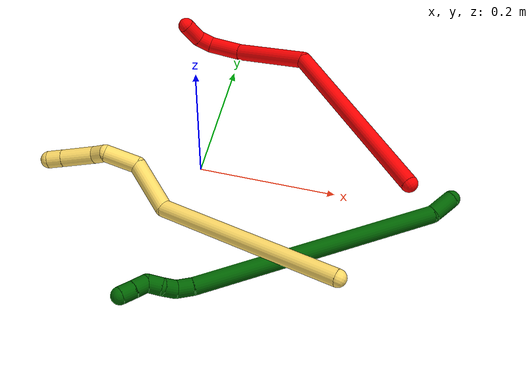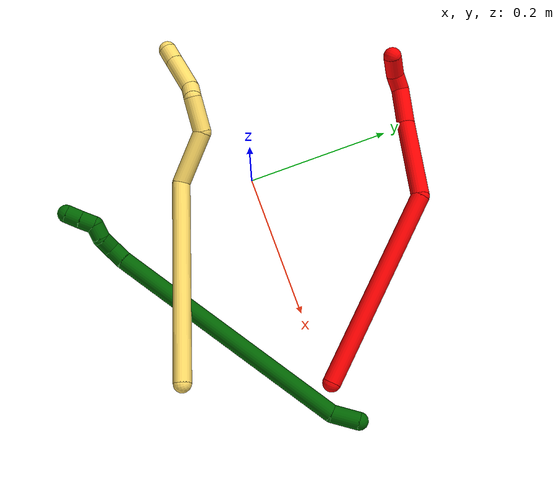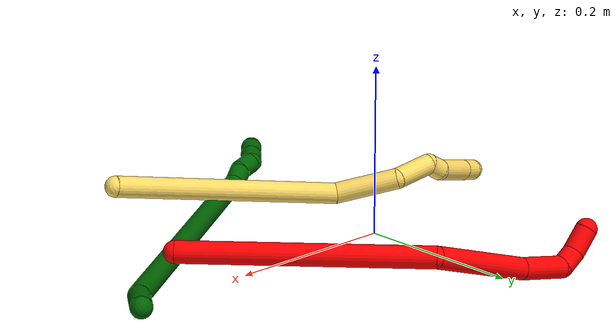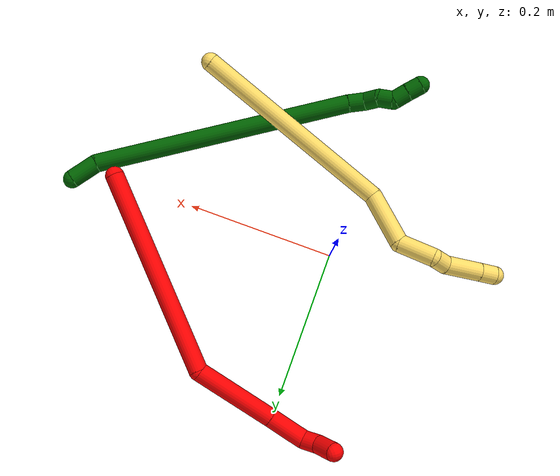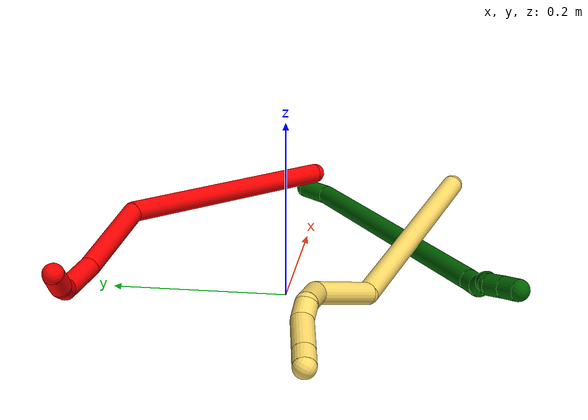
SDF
<sdf version="1.7">
 <world name="default">
  <model name="photoneo_s_sensor">
   <static>1</static>
   <pose>0 0 2 1.57079 1.57079 3.14159</pose>
   <link name="link">
    <inertial><mass>0.1</mass></inertial>
    <sensor name="sensor" type="depth">
     <update_rate>30</update_rate>
     <camera>
      <horizontal_fov>1.22</horizontal_fov>
      <image><width>1920</width><height>1200</height><format>B8G8R8</format></image>
      <clip><near>0.1</near><far>4</far></clip>
      <depth_camera><output>points</output></depth_camera>
     </camera>
     <plugin name="camera_plugin" filename="libgazebo_ros_depth_camera.so">
      <baseline>0.2</baseline>
      <alwaysOn>1</alwaysOn>
      <updateRate>0.0</updateRate>
      <cameraName>camera_ir</cameraName>
      <imageTopicName>/camera/color/image_raw</imageTopicName>
      <cameraInfoTopicName>/camera/color/camera_info</cameraInfoTopicName>
      <depthImageTopicName>/camera/depth/image_raw</depthImageTopicName>
      <depthImageCameraInfoTopicName>/camera/depth/camera_info</depthImageCameraInfoTopicName>
      <pointCloudTopicName>/camera/depth/points</pointCloudTopicName>
      <frameName>fr_optical</frameName>
      <pointCloudCutoff>0.1</pointCloudCutoff>
      <pointCloudCutoffMax>2.0</pointCloudCutoffMax>
      <distortionK1>0</distortionK1>
      <distortionK2>0</distortionK2>
      <distortionK3>0</distortionK3>
      <distortionT1>0</distortionT1>
      <distortionT2>0</distortionT2>
      <CxPrime>0</CxPrime>
      <Cx>0</Cx>
      <Cy>0</Cy>
      <focalLength>0</focalLength>
      <hackBaseline>0</hackBaseline>
     </plugin>
    </sensor>
   </link>
  </model>
  <model name="bin">
   <static>1</static>
   <link name="bottom">
    <collision name="collision-bottom">
     <pose>0 0 -0.01 0 -0 0</pose>
     <geometry><box><size>0.8 0.6 0.02</size></box></geometry>
     <surface>
      <friction><ode><mu>100</mu><mu2>100</mu2></ode></friction>
      <contact><collide_bitmask>65535</collide_bitmask></contact>
     </surface>
    </collision>
   </link>
   <link name="west_wall">
    <collision name="collision-west_wall">
     <pose>-0.41 0 0.1 0 -0 0</pose>
     <geometry><box><size>0.02 0.6 0.2</size></box></geometry>
     <surface>
      <friction><ode><mu>100</mu><mu2>100</mu2></ode></friction>
      <contact><collide_bitmask>65535</collide_bitmask></contact>
     </surface>
    </collision>
   </link>
   <link name="east_wall">
    <collision name="collision-east_wall">
     <pose>0.41 0 0.1 0 -0 0</pose>
     <geometry><box><size>0.02 0.6 0.2</size></box></geometry>
     <surface>
      <friction><ode><mu>100</mu><mu2>100</mu2></ode></friction>
      <contact><collide_bitmask>65535</collide_bitmask></contact>
     </surface>
    </collision>
   </link>
   <link name="south_wall">
    <collision name="collision-south_wall">
     <pose>0 -0.31 0.1 0 -0 0</pose>
     <geometry><box><size>0.8 0.02 0.2</size></box></geometry>
     <surface>
      <friction><ode><mu>100</mu><mu2>100</mu2></ode></friction>
      <contact><collide_bitmask>65535</collide_bitmask></contact>
     </surface>
    </collision>
   </link>
   <link name="north_wall">
    <collision name="collision-north_wall">
     <pose>0 0.31 0.1 0 -0 0</pose>
     <geometry><box><size>0.8 0.02 0.2</size></box></geometry>
     <surface>
      <friction><ode><mu>100</mu><mu2>100</mu2></ode></friction>
      <contact><collide_bitmask>65535</collide_bitmask></contact>
     </surface>
    </collision>
   </link>
  </model>
  <model name="2">
   <static>0</static>
   <link name="2">
    <collision name="collision-cylinder-e_1_1_4">
     <pose>-0.134992 0.032664 0.010885 -1.24913 -1.32107 1.02106</pose>
     <geometry><cylinder><radius>0.0125</radius><length>0.278628</length></cylinder></geometry>
     <surface>
      <friction><ode><mu>1.16</mu><mu2>1.16</mu2><slip1>0</slip1><slip2>0</slip2></ode></friction>
      <contact><ode><kp>1e+06</kp><kd>1</kd><max_vel>0</max_vel><min_depth>0.001</min_depth></ode></contact>
     </surface>
    </collision>
    <visual name="visual-cylinder-e_1_1_4">
     <pose>-0.134992 0.032664 0.010885 -1.24913 -1.32107 1.02106</pose>
     <geometry><cylinder><radius>0.0125</radius><length>0.278628</length></cylinder></geometry>
     <material><ambient>1 0 0 1</ambient></material>
    </visual>
    <collision name="collision-cylinder-e_2_4_5">
     <pose>-0.313024 0.071736 0.058801 -0.171372 -0.853 0.078022</pose>
     <geometry><cylinder><radius>0.0125</radius><length>0.114276</length></cylinder></geometry>
     <surface>
      <friction><ode><mu>1.16</mu><mu2>1.16</mu2><slip1>0</slip1><slip2>0</slip2></ode></friction>
      <contact><ode><kp>1e+06</kp><kd>1</kd><max_vel>0</max_vel><min_depth>0.001</min_depth></ode></contact>
     </surface>
    </collision>
    <visual name="visual-cylinder-e_2_4_5">
     <pose>-0.313024 0.071736 0.058801 -0.171372 -0.853 0.078022</pose>
     <geometry><cylinder><radius>0.0125</radius><length>0.114276</length></cylinder></geometry>
     <material><ambient>1 0 0 1</ambient></material>
    </visual>
    <collision name="collision-cylinder-e_3_5_6">
     <pose>-0.376294 0.085012 0.112254 -0.396032 -0.849187 0.180926</pose>
     <geometry><cylinder><radius>0.0125</radius><length>0.053892</length></cylinder></geometry>
     <surface>
      <friction><ode><mu>1.16</mu><mu2>1.16</mu2><slip1>0</slip1><slip2>0</slip2></ode></friction>
      <contact><ode><kp>1e+06</kp><kd>1</kd><max_vel>0</max_vel><min_depth>0.001</min_depth></ode></contact>
     </surface>
    </collision>
    <visual name="visual-cylinder-e_3_5_6">
     <pose>-0.376294 0.085012 0.112254 -0.396032 -0.849187 0.180926</pose>
     <geometry><cylinder><radius>0.0125</radius><length>0.053892</length></cylinder></geometry>
     <material><ambient>1 0 0 1</ambient></material>
    </visual>
    <collision name="collision-cylinder-e_4_6_7">
     <pose>-0.400435 0.101116 0.134274 -1.02604 -0.34748 0.197098</pose>
     <geometry><cylinder><radius>0.0125</radius><length>0.022973</length></cylinder></geometry>
     <surface>
      <friction><ode><mu>1.16</mu><mu2>1.16</mu2><slip1>0</slip1><slip2>0</slip2></ode></friction>
      <contact><ode><kp>1e+06</kp><kd>1</kd><max_vel>0</max_vel><min_depth>0.001</min_depth></ode></contact>
     </surface>
    </collision>
    <visual name="visual-cylinder-e_4_6_7">
     <pose>-0.400435 0.101116 0.134274 -1.02604 -0.34748 0.197098</pose>
     <geometry><cylinder><radius>0.0125</radius><length>0.022973</length></cylinder></geometry>
     <material><ambient>1 0 0 1</ambient></material>
    </visual>
    <collision name="collision-cylinder-e_5_7_2">
     <pose>-0.407946 0.124791 0.142521 -1.38922 -0.240432 0.200603</pose>
     <geometry><cylinder><radius>0.0125</radius><length>0.03023</length></cylinder></geometry>
     <surface>
      <friction><ode><mu>1.16</mu><mu2>1.16</mu2><slip1>0</slip1><slip2>0</slip2></ode></friction>
      <contact><ode><kp>1e+06</kp><kd>1</kd><max_vel>0</max_vel><min_depth>0.001</min_depth></ode></contact>
     </surface>
    </collision>
    <visual name="visual-cylinder-e_5_7_2">
     <pose>-0.407946 0.124791 0.142521 -1.38922 -0.240432 0.200603</pose>
     <geometry><cylinder><radius>0.0125</radius><length>0.03023</length></cylinder></geometry>
     <material><ambient>1 0 0 1</ambient></material>
    </visual>
    <collision name="collision-sphere-2">
     <pose>-0.411545 0.139231 0.145172 0 -0 0</pose>
     <geometry><sphere><radius>0.0125</radius></sphere></geometry>
     <surface>
      <friction><ode><mu>1.16</mu><mu2>1.16</mu2><slip1>0</slip1><slip2>0</slip2></ode></friction>
      <contact><ode><kp>1e+06</kp><kd>1</kd><max_vel>0</max_vel><min_depth>0.001</min_depth></ode></contact>
     </surface>
    </collision>
    <visual name="visual-sphere-2">
     <pose>-0.411545 0.139231 0.145172 0 -0 0</pose>
     <geometry><sphere><radius>0.0125</radius></sphere></geometry>
     <material><ambient>1 0 0 1</ambient></material>
    </visual>
    <collision name="collision-sphere-7">
     <pose>-0.404347 0.110352 0.13987 0 -0 0</pose>
     <geometry><sphere><radius>0.0125</radius></sphere></geometry>
     <surface>
      <friction><ode><mu>1.16</mu><mu2>1.16</mu2><slip1>0</slip1><slip2>0</slip2></ode></friction>
      <contact><ode><kp>1e+06</kp><kd>1</kd><max_vel>0</max_vel><min_depth>0.001</min_depth></ode></contact>
     </surface>
    </collision>
    <visual name="visual-sphere-7">
     <pose>-0.404347 0.110352 0.13987 0 -0 0</pose>
     <geometry><sphere><radius>0.0125</radius></sphere></geometry>
     <material><ambient>1 0 0 1</ambient></material>
    </visual>
    <collision name="collision-sphere-6">
     <pose>-0.396523 0.091879 0.128677 0 -0 0</pose>
     <geometry><sphere><radius>0.0125</radius></sphere></geometry>
     <surface>
      <friction><ode><mu>1.16</mu><mu2>1.16</mu2><slip1>0</slip1><slip2>0</slip2></ode></friction>
      <contact><ode><kp>1e+06</kp><kd>1</kd><max_vel>0</max_vel><min_depth>0.001</min_depth></ode></contact>
     </surface>
    </collision>
    <visual name="visual-sphere-6">
     <pose>-0.396523 0.091879 0.128677 0 -0 0</pose>
     <geometry><sphere><radius>0.0125</radius></sphere></geometry>
     <material><ambient>1 0 0 1</ambient></material>
    </visual>
    <collision name="collision-sphere-5">
     <pose>-0.356064 0.078145 0.095831 0 -0 0</pose>
     <geometry><sphere><radius>0.0125</radius></sphere></geometry>
     <surface>
      <friction><ode><mu>1.16</mu><mu2>1.16</mu2><slip1>0</slip1><slip2>0</slip2></ode></friction>
      <contact><ode><kp>1e+06</kp><kd>1</kd><max_vel>0</max_vel><min_depth>0.001</min_depth></ode></contact>
     </surface>
    </collision>
    <visual name="visual-sphere-5">
     <pose>-0.356064 0.078145 0.095831 0 -0 0</pose>
     <geometry><sphere><radius>0.0125</radius></sphere></geometry>
     <material><ambient>1 0 0 1</ambient></material>
    </visual>
    <collision name="collision-sphere-1">
     <geometry><sphere><radius>0.0125</radius></sphere></geometry>
     <surface>
      <friction><ode><mu>1.16</mu><mu2>1.16</mu2><slip1>0</slip1><slip2>0</slip2></ode></friction>
      <contact><ode><kp>1e+06</kp><kd>1</kd><max_vel>0</max_vel><min_depth>0.001</min_depth></ode></contact>
     </surface>
    </collision>
    <visual name="visual-sphere-1">
     <geometry><sphere><radius>0.0125</radius></sphere></geometry>
     <material><ambient>1 0 0 1</ambient></material>
    </visual>
    <collision name="collision-sphere-4">
     <pose>-0.269985 0.065327 0.02177 0 -0 0</pose>
     <geometry><sphere><radius>0.0125</radius></sphere></geometry>
     <surface>
      <friction><ode><mu>1.16</mu><mu2>1.16</mu2><slip1>0</slip1><slip2>0</slip2></ode></friction>
      <contact><ode><kp>1e+06</kp><kd>1</kd><max_vel>0</max_vel><min_depth>0.001</min_depth></ode></contact>
     </surface>
    </collision>
    <visual name="visual-sphere-4">
     <pose>-0.269985 0.065327 0.02177 0 -0 0</pose>
     <geometry><sphere><radius>0.0125</radius></sphere></geometry>
     <material><ambient>1 0 0 1</ambient></material>
    </visual>
    <inertial>
     <pose>-0.23039 0.055951 0.04639 0 -0 0</pose>
     <mass>0.5</mass>
     <inertia>
      <ixx>0.000693</ixx>
      <ixy>0</ixy>
      <ixz>0</ixz>
      <iyy>0.002268</iyy>
      <iyz>0</iyz>
      <izz>0.00143</izz>
     </inertia>
    </inertial>
   </link>
   <pose>0.301998 0.002478 0.054742 1.97298 -0.191042 -0.971519</pose>
  </model>
  <model name="5">
   <static>0</static>
   <link name="5">
    <collision name="collision-cylinder-e_1_1_4">
     <pose>-0.135678 -0.035193 -0.007168 1.77171 -1.31202 -1.5114</pose>
     <geometry><cylinder><radius>0.0125</radius><length>0.280702</length></cylinder></geometry>
     <surface>
      <friction><ode><mu>1.16</mu><mu2>1.16</mu2><slip1>0</slip1><slip2>0</slip2></ode></friction>
      <contact><ode><kp>1e+06</kp><kd>1</kd><max_vel>0</max_vel><min_depth>0.001</min_depth></ode></contact>
     </surface>
    </collision>
    <visual name="visual-cylinder-e_1_1_4">
     <pose>-0.135678 -0.035193 -0.007168 1.77171 -1.31202 -1.5114</pose>
     <geometry><cylinder><radius>0.0125</radius><length>0.280702</length></cylinder></geometry>
     <material><ambient>1 0.858824 0.4 1</ambient></material>
    </visual>
    <collision name="collision-cylinder-e_2_4_5">
     <pose>-0.302203 -0.071453 -0.036909 3.09436 -0.938508 -3.04849</pose>
     <geometry><cylinder><radius>0.0125</radius><length>0.07648</length></cylinder></geometry>
     <surface>
      <friction><ode><mu>1.16</mu><mu2>1.16</mu2><slip1>0</slip1><slip2>0</slip2></ode></friction>
      <contact><ode><kp>1e+06</kp><kd>1</kd><max_vel>0</max_vel><min_depth>0.001</min_depth></ode></contact>
     </surface>
    </collision>
    <visual name="visual-cylinder-e_2_4_5">
     <pose>-0.302203 -0.071453 -0.036909 3.09436 -0.938508 -3.04849</pose>
     <geometry><cylinder><radius>0.0125</radius><length>0.07648</length></cylinder></geometry>
     <material><ambient>1 0.858824 0.4 1</ambient></material>
    </visual>
    <collision name="collision-cylinder-e_3_5_6">
     <pose>-0.357463 -0.068803 -0.058835 -1.39795 -1.41747 1.24886</pose>
     <geometry><cylinder><radius>0.0125</radius><length>0.049406</length></cylinder></geometry>
     <surface>
      <friction><ode><mu>1.16</mu><mu2>1.16</mu2><slip1>0</slip1><slip2>0</slip2></ode></friction>
      <contact><ode><kp>1e+06</kp><kd>1</kd><max_vel>0</max_vel><min_depth>0.001</min_depth></ode></contact>
     </surface>
    </collision>
    <visual name="visual-cylinder-e_3_5_6">
     <pose>-0.357463 -0.068803 -0.058835 -1.39795 -1.41747 1.24886</pose>
     <geometry><cylinder><radius>0.0125</radius><length>0.049406</length></cylinder></geometry>
     <material><ambient>1 0.858824 0.4 1</ambient></material>
    </visual>
    <collision name="collision-cylinder-e_4_6_7">
     <pose>-0.390756 -0.070325 -0.055287 1.06535 -0.977637 -0.607679</pose>
     <geometry><cylinder><radius>0.0125</radius><length>0.02142</length></cylinder></geometry>
     <surface>
      <friction><ode><mu>1.16</mu><mu2>1.16</mu2><slip1>0</slip1><slip2>0</slip2></ode></friction>
      <contact><ode><kp>1e+06</kp><kd>1</kd><max_vel>0</max_vel><min_depth>0.001</min_depth></ode></contact>
     </surface>
    </collision>
    <visual name="visual-cylinder-e_4_6_7">
     <pose>-0.390756 -0.070325 -0.055287 1.06535 -0.977637 -0.607679</pose>
     <geometry><cylinder><radius>0.0125</radius><length>0.02142</length></cylinder></geometry>
     <material><ambient>1 0.858824 0.4 1</ambient></material>
    </visual>
    <collision name="collision-cylinder-e_5_7_8">
     <pose>-0.422196 -0.078705 -0.04235 0.303374 -1.13448 -0.194158</pose>
     <geometry><cylinder><radius>0.0125</radius><length>0.049782</length></cylinder></geometry>
     <surface>
      <friction><ode><mu>1.16</mu><mu2>1.16</mu2><slip1>0</slip1><slip2>0</slip2></ode></friction>
      <contact><ode><kp>1e+06</kp><kd>1</kd><max_vel>0</max_vel><min_depth>0.001</min_depth></ode></contact>
     </surface>
    </collision>
    <visual name="visual-cylinder-e_5_7_8">
     <pose>-0.422196 -0.078705 -0.04235 0.303374 -1.13448 -0.194158</pose>
     <geometry><cylinder><radius>0.0125</radius><length>0.049782</length></cylinder></geometry>
     <material><ambient>1 0.858824 0.4 1</ambient></material>
    </visual>
    <collision name="collision-cylinder-e_6_8_2">
     <pose>-0.454855 -0.083254 -0.027914 0.309527 -1.14207 -0.199786</pose>
     <geometry><cylinder><radius>0.0125</radius><length>0.022211</length></cylinder></geometry>
     <surface>
      <friction><ode><mu>1.16</mu><mu2>1.16</mu2><slip1>0</slip1><slip2>0</slip2></ode></friction>
      <contact><ode><kp>1e+06</kp><kd>1</kd><max_vel>0</max_vel><min_depth>0.001</min_depth></ode></contact>
     </surface>
    </collision>
    <visual name="visual-cylinder-e_6_8_2">
     <pose>-0.454855 -0.083254 -0.027914 0.309527 -1.14207 -0.199786</pose>
     <geometry><cylinder><radius>0.0125</radius><length>0.022211</length></cylinder></geometry>
     <material><ambient>1 0.858824 0.4 1</ambient></material>
    </visual>
    <collision name="collision-sphere-2">
     <pose>-0.464956 -0.084661 -0.023517 0 -0 0</pose>
     <geometry><sphere><radius>0.0125</radius></sphere></geometry>
     <surface>
      <friction><ode><mu>1.16</mu><mu2>1.16</mu2><slip1>0</slip1><slip2>0</slip2></ode></friction>
      <contact><ode><kp>1e+06</kp><kd>1</kd><max_vel>0</max_vel><min_depth>0.001</min_depth></ode></contact>
     </surface>
    </collision>
    <visual name="visual-sphere-2">
     <pose>-0.464956 -0.084661 -0.023517 0 -0 0</pose>
     <geometry><sphere><radius>0.0125</radius></sphere></geometry>
     <material><ambient>1 0.858824 0.4 1</ambient></material>
    </visual>
    <collision name="collision-sphere-4">
     <pose>-0.271355 -0.070386 -0.014335 0 -0 0</pose>
     <geometry><sphere><radius>0.0125</radius></sphere></geometry>
     <surface>
      <friction><ode><mu>1.16</mu><mu2>1.16</mu2><slip1>0</slip1><slip2>0</slip2></ode></friction>
      <contact><ode><kp>1e+06</kp><kd>1</kd><max_vel>0</max_vel><min_depth>0.001</min_depth></ode></contact>
     </surface>
    </collision>
    <visual name="visual-sphere-4">
     <pose>-0.271355 -0.070386 -0.014335 0 -0 0</pose>
     <geometry><sphere><radius>0.0125</radius></sphere></geometry>
     <material><ambient>1 0.858824 0.4 1</ambient></material>
    </visual>
    <collision name="collision-sphere-1">
     <geometry><sphere><radius>0.0125</radius></sphere></geometry>
     <surface>
      <friction><ode><mu>1.16</mu><mu2>1.16</mu2><slip1>0</slip1><slip2>0</slip2></ode></friction>
      <contact><ode><kp>1e+06</kp><kd>1</kd><max_vel>0</max_vel><min_depth>0.001</min_depth></ode></contact>
     </surface>
    </collision>
    <visual name="visual-sphere-1">
     <geometry><sphere><radius>0.0125</radius></sphere></geometry>
     <material><ambient>1 0.858824 0.4 1</ambient></material>
    </visual>
    <collision name="collision-sphere-8">
     <pose>-0.444755 -0.081848 -0.032311 0 -0 0</pose>
     <geometry><sphere><radius>0.0125</radius></sphere></geometry>
     <surface>
      <friction><ode><mu>1.16</mu><mu2>1.16</mu2><slip1>0</slip1><slip2>0</slip2></ode></friction>
      <contact><ode><kp>1e+06</kp><kd>1</kd><max_vel>0</max_vel><min_depth>0.001</min_depth></ode></contact>
     </surface>
    </collision>
    <visual name="visual-sphere-8">
     <pose>-0.444755 -0.081848 -0.032311 0 -0 0</pose>
     <geometry><sphere><radius>0.0125</radius></sphere></geometry>
     <material><ambient>1 0.858824 0.4 1</ambient></material>
    </visual>
    <collision name="collision-sphere-5">
     <pose>-0.33305 -0.07252 -0.059484 0 -0 0</pose>
     <geometry><sphere><radius>0.0125</radius></sphere></geometry>
     <surface>
      <friction><ode><mu>1.16</mu><mu2>1.16</mu2><slip1>0</slip1><slip2>0</slip2></ode></friction>
      <contact><ode><kp>1e+06</kp><kd>1</kd><max_vel>0</max_vel><min_depth>0.001</min_depth></ode></contact>
     </surface>
    </collision>
    <visual name="visual-sphere-5">
     <pose>-0.33305 -0.07252 -0.059484 0 -0 0</pose>
     <geometry><sphere><radius>0.0125</radius></sphere></geometry>
     <material><ambient>1 0.858824 0.4 1</ambient></material>
    </visual>
    <collision name="collision-sphere-6">
     <pose>-0.381876 -0.065087 -0.058186 0 -0 0</pose>
     <geometry><sphere><radius>0.0125</radius></sphere></geometry>
     <surface>
      <friction><ode><mu>1.16</mu><mu2>1.16</mu2><slip1>0</slip1><slip2>0</slip2></ode></friction>
      <contact><ode><kp>1e+06</kp><kd>1</kd><max_vel>0</max_vel><min_depth>0.001</min_depth></ode></contact>
     </surface>
    </collision>
    <visual name="visual-sphere-6">
     <pose>-0.381876 -0.065087 -0.058186 0 -0 0</pose>
     <geometry><sphere><radius>0.0125</radius></sphere></geometry>
     <material><ambient>1 0.858824 0.4 1</ambient></material>
    </visual>
    <collision name="collision-sphere-7">
     <pose>-0.399637 -0.075563 -0.052389 0 -0 0</pose>
     <geometry><sphere><radius>0.0125</radius></sphere></geometry>
     <surface>
      <friction><ode><mu>1.16</mu><mu2>1.16</mu2><slip1>0</slip1><slip2>0</slip2></ode></friction>
      <contact><ode><kp>1e+06</kp><kd>1</kd><max_vel>0</max_vel><min_depth>0.001</min_depth></ode></contact>
     </surface>
    </collision>
    <visual name="visual-sphere-7">
     <pose>-0.399637 -0.075563 -0.052389 0 -0 0</pose>
     <geometry><sphere><radius>0.0125</radius></sphere></geometry>
     <material><ambient>1 0.858824 0.4 1</ambient></material>
    </visual>
    <inertial>
     <pose>-0.236697 -0.052033 -0.023308 0 -0 0</pose>
     <mass>0.5</mass>
     <inertia>
      <ixx>-0.0005</ixx>
      <ixy>0</ixy>
      <ixz>0</ixz>
      <iyy>0.001316</iyy>
      <iyz>0</iyz>
      <izz>0.002316</izz>
     </inertia>
    </inertial>
   </link>
   <pose>0.234938 -0.181868 0.066387 2.00007 0.037233 -0.16733</pose>
  </model>
  <model name="6">
   <static>0</static>
   <link name="6">
    <collision name="collision-cylinder-e_1_1_4">
     <pose>-0.015402 -0.009938 -0.006239 2.13144 -0.919767 -1.46098</pose>
     <geometry><cylinder><radius>0.0125</radius><length>0.038725</length></cylinder></geometry>
     <surface>
      <friction><ode><mu>1.16</mu><mu2>1.16</mu2><slip1>0</slip1><slip2>0</slip2></ode></friction>
      <contact><ode><kp>1e+06</kp><kd>1</kd><max_vel>0</max_vel><min_depth>0.001</min_depth></ode></contact>
     </surface>
    </collision>
    <visual name="visual-cylinder-e_1_1_4">
     <pose>-0.015402 -0.009938 -0.006239 2.13144 -0.919767 -1.46098</pose>
     <geometry><cylinder><radius>0.0125</radius><length>0.038725</length></cylinder></geometry>
     <material><ambient>0 0.392157 0.003922 1</ambient></material>
    </visual>
    <collision name="collision-cylinder-e_2_4_5">
     <pose>-0.140306 -0.157381 -0.035161 1.73428 -0.665972 -0.774069</pose>
     <geometry><cylinder><radius>0.0125</radius><length>0.354474</length></cylinder></geometry>
     <surface>
      <friction><ode><mu>1.16</mu><mu2>1.16</mu2><slip1>0</slip1><slip2>0</slip2></ode></friction>
      <contact><ode><kp>1e+06</kp><kd>1</kd><max_vel>0</max_vel><min_depth>0.001</min_depth></ode></contact>
     </surface>
    </collision>
    <visual name="visual-cylinder-e_2_4_5">
     <pose>-0.140306 -0.157381 -0.035161 1.73428 -0.665972 -0.774069</pose>
     <geometry><cylinder><radius>0.0125</radius><length>0.354474</length></cylinder></geometry>
     <material><ambient>0 0.392157 0.003922 1</ambient></material>
    </visual>
    <collision name="collision-cylinder-e_3_5_6">
     <pose>-0.255997 -0.304965 -0.0588 1.66534 -0.548851 -0.600273</pose>
     <geometry><cylinder><radius>0.0125</radius><length>0.02373</length></cylinder></geometry>
     <surface>
      <friction><ode><mu>1.16</mu><mu2>1.16</mu2><slip1>0</slip1><slip2>0</slip2></ode></friction>
      <contact><ode><kp>1e+06</kp><kd>1</kd><max_vel>0</max_vel><min_depth>0.001</min_depth></ode></contact>
     </surface>
    </collision>
    <visual name="visual-cylinder-e_3_5_6">
     <pose>-0.255997 -0.304965 -0.0588 1.66534 -0.548851 -0.600273</pose>
     <geometry><cylinder><radius>0.0125</radius><length>0.02373</length></cylinder></geometry>
     <material><ambient>0 0.392157 0.003922 1</ambient></material>
    </visual>
    <collision name="collision-cylinder-e_4_6_7">
     <pose>-0.26348 -0.324634 -0.064356 2.01799 -0.120947 -0.191788</pose>
     <geometry><cylinder><radius>0.0125</radius><length>0.021433</length></cylinder></geometry>
     <surface>
      <friction><ode><mu>1.16</mu><mu2>1.16</mu2><slip1>0</slip1><slip2>0</slip2></ode></friction>
      <contact><ode><kp>1e+06</kp><kd>1</kd><max_vel>0</max_vel><min_depth>0.001</min_depth></ode></contact>
     </surface>
    </collision>
    <visual name="visual-cylinder-e_4_6_7">
     <pose>-0.26348 -0.324634 -0.064356 2.01799 -0.120947 -0.191788</pose>
     <geometry><cylinder><radius>0.0125</radius><length>0.021433</length></cylinder></geometry>
     <material><ambient>0 0.392157 0.003922 1</ambient></material>
    </visual>
    <collision name="collision-cylinder-e_5_7_8">
     <pose>-0.266319 -0.344346 -0.068961 1.57128 -0.151578 -0.151651</pose>
     <geometry><cylinder><radius>0.0125</radius><length>0.020474</length></cylinder></geometry>
     <surface>
      <friction><ode><mu>1.16</mu><mu2>1.16</mu2><slip1>0</slip1><slip2>0</slip2></ode></friction>
      <contact><ode><kp>1e+06</kp><kd>1</kd><max_vel>0</max_vel><min_depth>0.001</min_depth></ode></contact>
     </surface>
    </collision>
    <visual name="visual-cylinder-e_5_7_8">
     <pose>-0.266319 -0.344346 -0.068961 1.57128 -0.151578 -0.151651</pose>
     <geometry><cylinder><radius>0.0125</radius><length>0.020474</length></cylinder></geometry>
     <material><ambient>0 0.392157 0.003922 1</ambient></material>
    </visual>
    <collision name="collision-cylinder-e_6_8_9">
     <pose>-0.274518 -0.361122 -0.073194 2.13665 -0.700824 -1.17387</pose>
     <geometry><cylinder><radius>0.0125</radius><length>0.020635</length></cylinder></geometry>
     <surface>
      <friction><ode><mu>1.16</mu><mu2>1.16</mu2><slip1>0</slip1><slip2>0</slip2></ode></friction>
      <contact><ode><kp>1e+06</kp><kd>1</kd><max_vel>0</max_vel><min_depth>0.001</min_depth></ode></contact>
     </surface>
    </collision>
    <visual name="visual-cylinder-e_6_8_9">
     <pose>-0.274518 -0.361122 -0.073194 2.13665 -0.700824 -1.17387</pose>
     <geometry><cylinder><radius>0.0125</radius><length>0.020635</length></cylinder></geometry>
     <material><ambient>0 0.392157 0.003922 1</ambient></material>
    </visual>
    <collision name="collision-cylinder-e_7_9_2">
     <pose>-0.28776 -0.374625 -0.081303 2.08652 -0.697027 -1.11525</pose>
     <geometry><cylinder><radius>0.0125</radius><length>0.020528</length></cylinder></geometry>
     <surface>
      <friction><ode><mu>1.16</mu><mu2>1.16</mu2><slip1>0</slip1><slip2>0</slip2></ode></friction>
      <contact><ode><kp>1e+06</kp><kd>1</kd><max_vel>0</max_vel><min_depth>0.001</min_depth></ode></contact>
     </surface>
    </collision>
    <visual name="visual-cylinder-e_7_9_2">
     <pose>-0.28776 -0.374625 -0.081303 2.08652 -0.697027 -1.11525</pose>
     <geometry><cylinder><radius>0.0125</radius><length>0.020528</length></cylinder></geometry>
     <material><ambient>0 0.392157 0.003922 1</ambient></material>
    </visual>
    <collision name="collision-sphere-2">
     <pose>-0.294349 -0.381472 -0.085184 0 -0 0</pose>
     <geometry><sphere><radius>0.0125</radius></sphere></geometry>
     <surface>
      <friction><ode><mu>1.16</mu><mu2>1.16</mu2><slip1>0</slip1><slip2>0</slip2></ode></friction>
      <contact><ode><kp>1e+06</kp><kd>1</kd><max_vel>0</max_vel><min_depth>0.001</min_depth></ode></contact>
     </surface>
    </collision>
    <visual name="visual-sphere-2">
     <pose>-0.294349 -0.381472 -0.085184 0 -0 0</pose>
     <geometry><sphere><radius>0.0125</radius></sphere></geometry>
     <material><ambient>0 0.392157 0.003922 1</ambient></material>
    </visual>
    <collision name="collision-sphere-9">
     <pose>-0.281171 -0.367779 -0.077421 0 -0 0</pose>
     <geometry><sphere><radius>0.0125</radius></sphere></geometry>
     <surface>
      <friction><ode><mu>1.16</mu><mu2>1.16</mu2><slip1>0</slip1><slip2>0</slip2></ode></friction>
      <contact><ode><kp>1e+06</kp><kd>1</kd><max_vel>0</max_vel><min_depth>0.001</min_depth></ode></contact>
     </surface>
    </collision>
    <visual name="visual-sphere-9">
     <pose>-0.281171 -0.367779 -0.077421 0 -0 0</pose>
     <geometry><sphere><radius>0.0125</radius></sphere></geometry>
     <material><ambient>0 0.392157 0.003922 1</ambient></material>
    </visual>
    <collision name="collision-sphere-4">
     <pose>-0.030804 -0.019875 -0.012478 0 -0 0</pose>
     <geometry><sphere><radius>0.0125</radius></sphere></geometry>
     <surface>
      <friction><ode><mu>1.16</mu><mu2>1.16</mu2><slip1>0</slip1><slip2>0</slip2></ode></friction>
      <contact><ode><kp>1e+06</kp><kd>1</kd><max_vel>0</max_vel><min_depth>0.001</min_depth></ode></contact>
     </surface>
    </collision>
    <visual name="visual-sphere-4">
     <pose>-0.030804 -0.019875 -0.012478 0 -0 0</pose>
     <geometry><sphere><radius>0.0125</radius></sphere></geometry>
     <material><ambient>0 0.392157 0.003922 1</ambient></material>
    </visual>
    <collision name="collision-sphere-1">
     <geometry><sphere><radius>0.0125</radius></sphere></geometry>
     <surface>
      <friction><ode><mu>1.16</mu><mu2>1.16</mu2><slip1>0</slip1><slip2>0</slip2></ode></friction>
      <contact><ode><kp>1e+06</kp><kd>1</kd><max_vel>0</max_vel><min_depth>0.001</min_depth></ode></contact>
     </surface>
    </collision>
    <visual name="visual-sphere-1">
     <geometry><sphere><radius>0.0125</radius></sphere></geometry>
     <material><ambient>0 0.392157 0.003922 1</ambient></material>
    </visual>
    <collision name="collision-sphere-8">
     <pose>-0.267865 -0.354465 -0.068966 0 -0 0</pose>
     <geometry><sphere><radius>0.0125</radius></sphere></geometry>
     <surface>
      <friction><ode><mu>1.16</mu><mu2>1.16</mu2><slip1>0</slip1><slip2>0</slip2></ode></friction>
      <contact><ode><kp>1e+06</kp><kd>1</kd><max_vel>0</max_vel><min_depth>0.001</min_depth></ode></contact>
     </surface>
    </collision>
    <visual name="visual-sphere-8">
     <pose>-0.267865 -0.354465 -0.068966 0 -0 0</pose>
     <geometry><sphere><radius>0.0125</radius></sphere></geometry>
     <material><ambient>0 0.392157 0.003922 1</ambient></material>
    </visual>
    <collision name="collision-sphere-5">
     <pose>-0.249807 -0.294888 -0.057844 0 -0 0</pose>
     <geometry><sphere><radius>0.0125</radius></sphere></geometry>
     <surface>
      <friction><ode><mu>1.16</mu><mu2>1.16</mu2><slip1>0</slip1><slip2>0</slip2></ode></friction>
      <contact><ode><kp>1e+06</kp><kd>1</kd><max_vel>0</max_vel><min_depth>0.001</min_depth></ode></contact>
     </surface>
    </collision>
    <visual name="visual-sphere-5">
     <pose>-0.249807 -0.294888 -0.057844 0 -0 0</pose>
     <geometry><sphere><radius>0.0125</radius></sphere></geometry>
     <material><ambient>0 0.392157 0.003922 1</ambient></material>
    </visual>
    <collision name="collision-sphere-6">
     <pose>-0.262188 -0.315042 -0.059755 0 -0 0</pose>
     <geometry><sphere><radius>0.0125</radius></sphere></geometry>
     <surface>
      <friction><ode><mu>1.16</mu><mu2>1.16</mu2><slip1>0</slip1><slip2>0</slip2></ode></friction>
      <contact><ode><kp>1e+06</kp><kd>1</kd><max_vel>0</max_vel><min_depth>0.001</min_depth></ode></contact>
     </surface>
    </collision>
    <visual name="visual-sphere-6">
     <pose>-0.262188 -0.315042 -0.059755 0 -0 0</pose>
     <geometry><sphere><radius>0.0125</radius></sphere></geometry>
     <material><ambient>0 0.392157 0.003922 1</ambient></material>
    </visual>
    <collision name="collision-sphere-7">
     <pose>-0.264773 -0.334226 -0.068956 0 -0 0</pose>
     <geometry><sphere><radius>0.0125</radius></sphere></geometry>
     <surface>
      <friction><ode><mu>1.16</mu><mu2>1.16</mu2><slip1>0</slip1><slip2>0</slip2></ode></friction>
      <contact><ode><kp>1e+06</kp><kd>1</kd><max_vel>0</max_vel><min_depth>0.001</min_depth></ode></contact>
     </surface>
    </collision>
    <visual name="visual-sphere-7">
     <pose>-0.264773 -0.334226 -0.068956 0 -0 0</pose>
     <geometry><sphere><radius>0.0125</radius></sphere></geometry>
     <material><ambient>0 0.392157 0.003922 1</ambient></material>
    </visual>
    <inertial>
     <pose>-0.158156 -0.185119 -0.040143 0 -0 0</pose>
     <mass>0.5</mass>
     <inertia>
      <ixx>2.2e-05</ixx>
      <ixy>0</ixy>
      <ixz>0</ixz>
      <iyy>-0.000927</iyy>
      <iyz>0</iyz>
      <izz>0.005204</izz>
     </inertia>
    </inertial>
   </link>
   <pose>0.364292 0.021772 0.014099 -2.70779 -0.622697 1.29288</pose>
  </model>
 </world>
</sdf>
